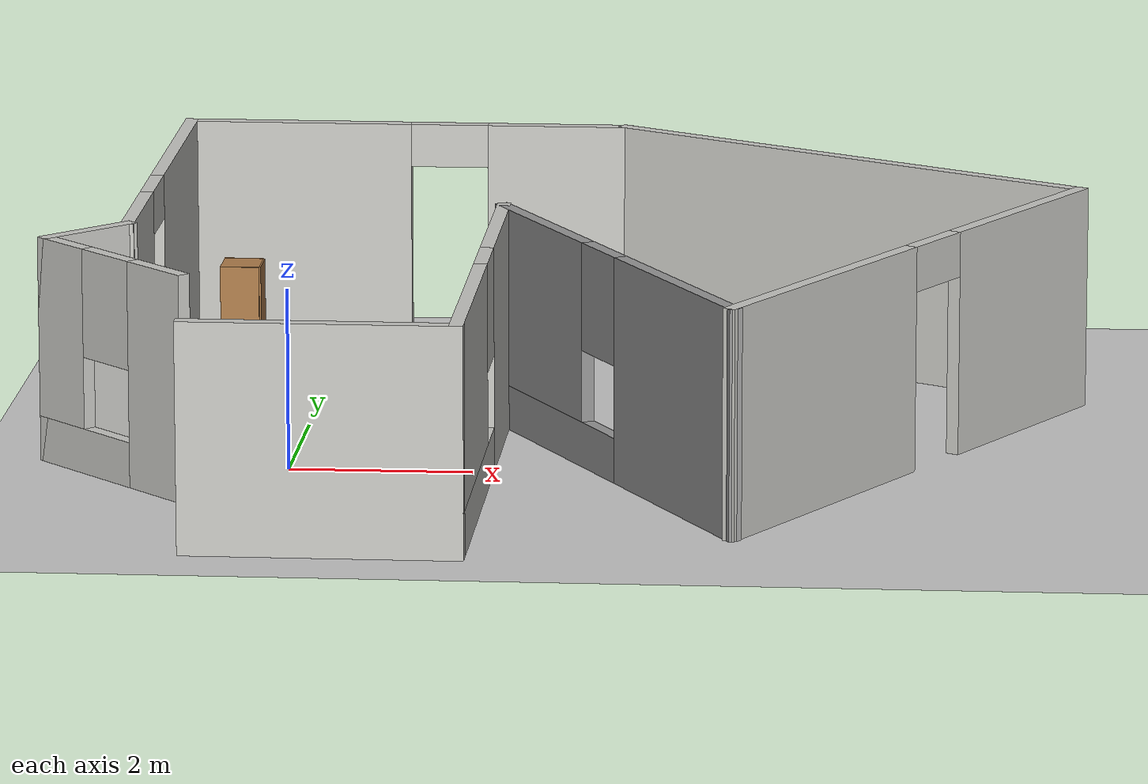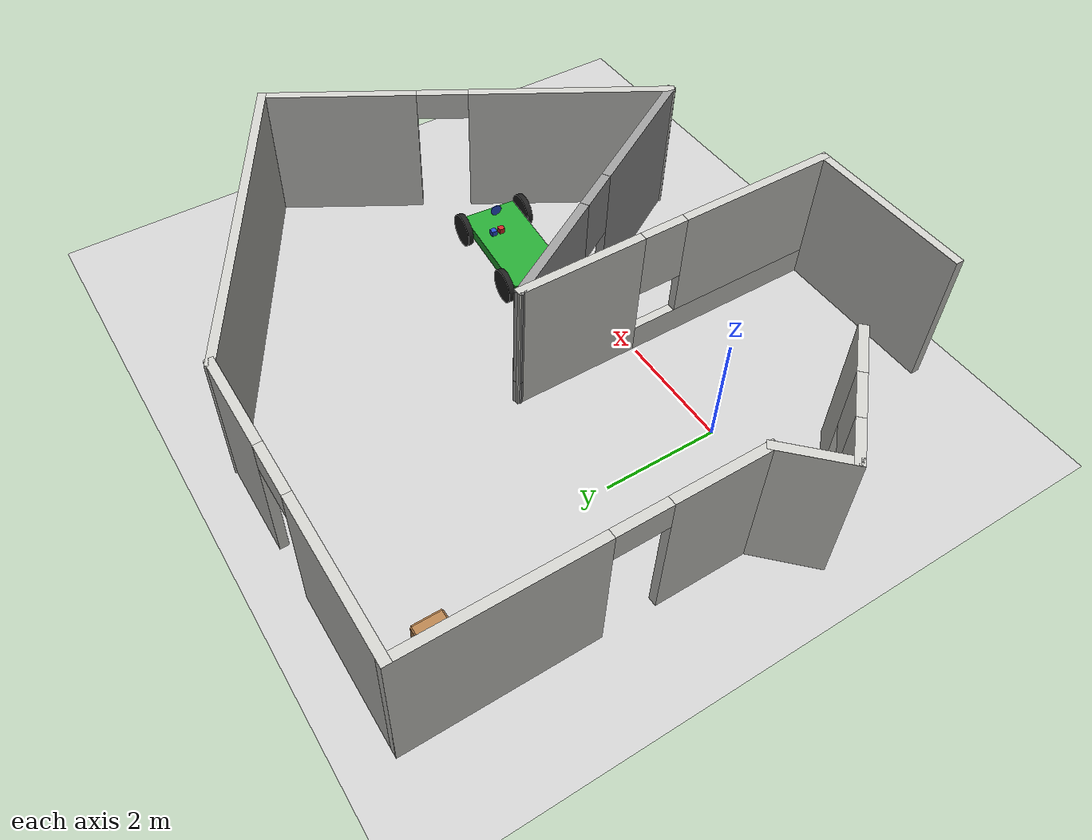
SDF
<sdf version="1.7">
 <world name="default">
  <light name="sun" type="directional">
   <pose>0 0 10 0 -0 0</pose>
   <diffuse>0.8 0.8 0.8 1</diffuse>
   <specular>0.2 0.2 0.2 1</specular>
   <attenuation>
    <range>1000</range>
    <constant>0.9</constant>
    <linear>0.01</linear>
    <quadratic>0.001</quadratic>
   </attenuation>
   <direction>-0.5 0.1 -0.9</direction>
   <spot><inner_angle>0</inner_angle><outer_angle>0</outer_angle><falloff>0</falloff></spot>
  </light>
  <model name="ground_plane">
   <static>1</static>
   <link name="link">
    <collision name="collision">
     <geometry><plane><normal>0 0 1</normal><size>100 100</size></plane></geometry>
     <surface>
      <contact><collide_bitmask>65535</collide_bitmask></contact>
      <friction><ode><mu>100</mu><mu2>50</mu2></ode></friction>
     </surface>
    </collision>
    <visual name="visual">
     <cast_shadows>0</cast_shadows>
     <geometry><plane><normal>0 0 1</normal><size>100 100</size></plane></geometry>
     <material>
      <script><uri>file://media/materials/scripts/gazebo.material</uri><name>Gazebo/Grey</name></script>
     </material>
    </visual>
   </link>
  </model>
  <gravity>0 0 -9.8</gravity>
  <magnetic_field>6e-06 2.3e-05 -4.2e-05</magnetic_field>
  <atmosphere type="adiabatic"/>
  <physics type="ode">
   <max_step_size>0.001</max_step_size>
   <real_time_factor>1</real_time_factor>
   <real_time_update_rate>1000</real_time_update_rate>
  </physics>
  <scene><ambient>0.4 0.4 0.4 1</ambient><background>0.7 0.7 0.7 1</background><shadows>1</shadows></scene>
  <audio><device>default</device></audio>
  <spherical_coordinates>
   <surface_model>EARTH_WGS84</surface_model>
   <latitude_deg>0</latitude_deg>
   <longitude_deg>0</longitude_deg>
   <elevation>0</elevation>
   <heading_deg>0</heading_deg>
  </spherical_coordinates>
  <model name="ors_building">
   <pose>2.92877 1.47219 0 0 -0 0</pose>
   <link name="Wall_0">
    <pose>-4.74763 -2.12288 0 0 -0 2.35619</pose>
    <visual name="Wall_0_Visual_0">
     <pose>-0.799423 0 1.25 0 -0 0</pose>
     <geometry><box><size>0.901154 0.15 2.5</size></box></geometry>
     <material>
      <script><uri>file://media/materials/scripts/gazebo.material</uri><name>Gazebo/CeilingTiled</name></script>
      <ambient>1 1 1 1</ambient>
     </material>
     <meta><layer>0</layer></meta>
    </visual>
    <collision name="Wall_0_Collision_0">
     <geometry><box><size>0.901154 0.15 2.5</size></box></geometry>
     <pose>-0.799423 0 1.25 0 -0 0</pose>
    </collision>
    <visual name="Wall_0_Visual_1">
     <pose>0.450577 0 0.25 0 -0 0</pose>
     <geometry><box><size>1.59885 0.15 0.5</size></box></geometry>
     <material>
      <script><uri>file://media/materials/scripts/gazebo.material</uri><name>Gazebo/CeilingTiled</name></script>
      <ambient>1 1 1 1</ambient>
     </material>
     <meta><layer>0</layer></meta>
    </visual>
    <collision name="Wall_0_Collision_1">
     <geometry><box><size>1.59885 0.15 0.5</size></box></geometry>
     <pose>0.450577 0 0.25 0 -0 0</pose>
    </collision>
    <visual name="Wall_0_Visual_2">
     <pose>0.850577 0 1.5 0 -0 0</pose>
     <geometry><box><size>0.798846 0.15 2</size></box></geometry>
     <material>
      <script><uri>file://media/materials/scripts/gazebo.material</uri><name>Gazebo/CeilingTiled</name></script>
      <ambient>1 1 1 1</ambient>
     </material>
     <meta><layer>0</layer></meta>
    </visual>
    <collision name="Wall_0_Collision_2">
     <geometry><box><size>0.798846 0.15 2</size></box></geometry>
     <pose>0.850577 0 1.5 0 -0 0</pose>
    </collision>
    <visual name="Wall_0_Visual_3">
     <pose>0.051154 0 1.9 0 -0 0</pose>
     <geometry><box><size>0.8 0.15 1.2</size></box></geometry>
     <material>
      <script><uri>file://media/materials/scripts/gazebo.material</uri><name>Gazebo/CeilingTiled</name></script>
      <ambient>1 1 1 1</ambient>
     </material>
     <meta><layer>0</layer></meta>
    </visual>
    <collision name="Wall_0_Collision_3">
     <geometry><box><size>0.8 0.15 1.2</size></box></geometry>
     <pose>0.051154 0 1.9 0 -0 0</pose>
    </collision>
   </link>
   <link name="Wall_1">
    <collision name="Wall_1_Collision">
     <geometry><box><size>1.25 0.15 2.5</size></box></geometry>
     <pose>0 0 1.25 0 -0 0</pose>
    </collision>
    <visual name="Wall_1_Visual">
     <pose>0 0 1.25 0 -0 0</pose>
     <geometry><box><size>1.25 0.15 2.5</size></box></geometry>
     <material>
      <script><uri>file://media/materials/scripts/gazebo.material</uri><name>Gazebo/CeilingTiled</name></script>
      <ambient>1 1 1 1</ambient>
     </material>
     <meta><layer>0</layer></meta>
    </visual>
    <pose>-5.18957 -0.903116 0 0 -0 0.785398</pose>
   </link>
   <link name="Wall_2">
    <pose>-4.80066 2.28579 0 0 -0 1.5708</pose>
    <visual name="Wall_2_Visual_0">
     <pose>-2.03282 0 1.25 0 -0 0</pose>
     <geometry><box><size>1.68436 0.15 2.5</size></box></geometry>
     <material>
      <script><uri>file://media/materials/scripts/gazebo.material</uri><name>Gazebo/CeilingTiled</name></script>
      <ambient>1 1 1 1</ambient>
     </material>
     <meta><layer>0</layer></meta>
    </visual>
    <collision name="Wall_2_Collision_0">
     <geometry><box><size>1.68436 0.15 2.5</size></box></geometry>
     <pose>-2.03282 0 1.25 0 -0 0</pose>
    </collision>
    <visual name="Wall_2_Visual_1">
     <pose>1.29218 0 1.25 0 -0 0</pose>
     <geometry><box><size>3.16564 0.15 2.5</size></box></geometry>
     <material>
      <script><uri>file://media/materials/scripts/gazebo.material</uri><name>Gazebo/CeilingTiled</name></script>
      <ambient>1 1 1 1</ambient>
     </material>
     <meta><layer>0</layer></meta>
    </visual>
    <collision name="Wall_2_Collision_1">
     <geometry><box><size>3.16564 0.15 2.5</size></box></geometry>
     <pose>1.29218 0 1.25 0 -0 0</pose>
    </collision>
    <visual name="Wall_2_Visual_2">
     <pose>-0.740638 0 2.25 0 -0 0</pose>
     <geometry><box><size>0.9 0.15 0.5</size></box></geometry>
     <material>
      <script><uri>file://media/materials/scripts/gazebo.material</uri><name>Gazebo/CeilingTiled</name></script>
      <ambient>1 1 1 1</ambient>
     </material>
     <meta><layer>0</layer></meta>
    </visual>
    <collision name="Wall_2_Collision_2">
     <geometry><box><size>0.9 0.15 0.5</size></box></geometry>
     <pose>-0.740638 0 2.25 0 -0 0</pose>
    </collision>
   </link>
   <link name="Wall_3">
    <pose>-2.25066 5.08579 0 0 -0 0</pose>
    <visual name="Wall_3_Visual_0">
     <pose>-1.29466 0 1.25 0 -0 0</pose>
     <geometry><box><size>2.66068 0.15 2.5</size></box></geometry>
     <material>
      <script><uri>file://media/materials/scripts/gazebo.material</uri><name>Gazebo/CeilingTiled</name></script>
      <ambient>1 1 1 1</ambient>
     </material>
     <meta><layer>0</layer></meta>
    </visual>
    <collision name="Wall_3_Collision_0">
     <geometry><box><size>2.66068 0.15 2.5</size></box></geometry>
     <pose>-1.29466 0 1.25 0 -0 0</pose>
    </collision>
    <visual name="Wall_3_Visual_1">
     <pose>1.78034 0 1.25 0 -0 0</pose>
     <geometry><box><size>1.68932 0.15 2.5</size></box></geometry>
     <material>
      <script><uri>file://media/materials/scripts/gazebo.material</uri><name>Gazebo/CeilingTiled</name></script>
      <ambient>1 1 1 1</ambient>
     </material>
     <meta><layer>0</layer></meta>
    </visual>
    <collision name="Wall_3_Collision_1">
     <geometry><box><size>1.68932 0.15 2.5</size></box></geometry>
     <pose>1.78034 0 1.25 0 -0 0</pose>
    </collision>
    <visual name="Wall_3_Visual_2">
     <pose>0.485677 0 2.25 0 -0 0</pose>
     <geometry><box><size>0.9 0.15 0.5</size></box></geometry>
     <material>
      <script><uri>file://media/materials/scripts/gazebo.material</uri><name>Gazebo/CeilingTiled</name></script>
      <ambient>1 1 1 1</ambient>
     </material>
     <meta><layer>0</layer></meta>
    </visual>
    <collision name="Wall_3_Collision_2">
     <geometry><box><size>0.9 0.15 0.5</size></box></geometry>
     <pose>0.485677 0 2.25 0 -0 0</pose>
    </collision>
   </link>
   <link name="Wall_4">
    <collision name="Wall_4_Collision">
     <geometry><box><size>6.25 0.15 2.5</size></box></geometry>
     <pose>0 0 1.25 0 -0 0</pose>
    </collision>
    <visual name="Wall_4_Visual">
     <pose>0 0 1.25 0 -0 0</pose>
     <geometry><box><size>6.25 0.15 2.5</size></box></geometry>
     <material>
      <script><uri>file://media/materials/scripts/gazebo.material</uri><name>Gazebo/CeilingTiled</name></script>
      <ambient>1 1 1 1</ambient>
     </material>
     <meta><layer>0</layer></meta>
    </visual>
    <pose>2.94072 3.56079 0 0 -0 -0.523599</pose>
   </link>
   <link name="Wall_5">
    <pose>3.80709 -1.0386 0 0 -0 -2.0944</pose>
    <visual name="Wall_5_Visual_0">
     <pose>-2.25054 0 1.25 0 -0 0</pose>
     <geometry><box><size>2.74892 0.15 2.5</size></box></geometry>
     <material>
      <script><uri>file://media/materials/scripts/gazebo.material</uri><name>Gazebo/CeilingTiled</name></script>
      <ambient>1 1 1 1</ambient>
     </material>
     <meta><layer>0</layer></meta>
    </visual>
    <collision name="Wall_5_Collision_0">
     <geometry><box><size>2.74892 0.15 2.5</size></box></geometry>
     <pose>-2.25054 0 1.25 0 -0 0</pose>
    </collision>
    <visual name="Wall_5_Visual_1">
     <pose>1.82446 0 1.25 0 -0 0</pose>
     <geometry><box><size>3.60108 0.15 2.5</size></box></geometry>
     <material>
      <script><uri>file://media/materials/scripts/gazebo.material</uri><name>Gazebo/CeilingTiled</name></script>
      <ambient>1 1 1 1</ambient>
     </material>
     <meta><layer>0</layer></meta>
    </visual>
    <collision name="Wall_5_Collision_1">
     <geometry><box><size>3.60108 0.15 2.5</size></box></geometry>
     <pose>1.82446 0 1.25 0 -0 0</pose>
    </collision>
    <visual name="Wall_5_Visual_2">
     <pose>-0.42608 0 2.25 0 -0 0</pose>
     <geometry><box><size>0.9 0.15 0.5</size></box></geometry>
     <material>
      <script><uri>file://media/materials/scripts/gazebo.material</uri><name>Gazebo/CeilingTiled</name></script>
      <ambient>1 1 1 1</ambient>
     </material>
     <meta><layer>0</layer></meta>
    </visual>
    <collision name="Wall_5_Collision_2">
     <geometry><box><size>0.9 0.15 0.5</size></box></geometry>
     <pose>-0.42608 0 2.25 0 -0 0</pose>
    </collision>
   </link>
   <link name="Wall_7">
    <pose>0.632093 -1.68812 0 0 -0 2.0944</pose>
    <visual name="Wall_7_Visual_0">
     <pose>-1.50613 0 1.25 0 -0 0</pose>
     <geometry><box><size>2.73775 0.15 2.5</size></box></geometry>
     <material>
      <script><uri>file://media/materials/scripts/gazebo.material</uri><name>Gazebo/Grey</name></script>
      <ambient>1 1 1 1</ambient>
     </material>
     <meta><layer>0</layer></meta>
    </visual>
    <collision name="Wall_7_Collision_0">
     <geometry><box><size>2.73775 0.15 2.5</size></box></geometry>
     <pose>-1.50613 0 1.25 0 -0 0</pose>
    </collision>
    <visual name="Wall_7_Visual_1">
     <pose>1.36887 0 0.25 0 -0 0</pose>
     <geometry><box><size>3.01225 0.15 0.5</size></box></geometry>
     <material>
      <script><uri>file://media/materials/scripts/gazebo.material</uri><name>Gazebo/Grey</name></script>
      <ambient>1 1 1 1</ambient>
     </material>
     <meta><layer>0</layer></meta>
    </visual>
    <collision name="Wall_7_Collision_1">
     <geometry><box><size>3.01225 0.15 0.5</size></box></geometry>
     <pose>1.36887 0 0.25 0 -0 0</pose>
    </collision>
    <visual name="Wall_7_Visual_2">
     <pose>1.76887 0 1.5 0 -0 0</pose>
     <geometry><box><size>2.21225 0.15 2</size></box></geometry>
     <material>
      <script><uri>file://media/materials/scripts/gazebo.material</uri><name>Gazebo/Grey</name></script>
      <ambient>1 1 1 1</ambient>
     </material>
     <meta><layer>0</layer></meta>
    </visual>
    <collision name="Wall_7_Collision_2">
     <geometry><box><size>2.21225 0.15 2</size></box></geometry>
     <pose>1.76887 0 1.5 0 -0 0</pose>
    </collision>
    <visual name="Wall_7_Visual_3">
     <pose>0.262748 0 1.9 0 -0 0</pose>
     <geometry><box><size>0.8 0.15 1.2</size></box></geometry>
     <material>
      <script><uri>file://media/materials/scripts/gazebo.material</uri><name>Gazebo/Grey</name></script>
      <ambient>1 1 1 1</ambient>
     </material>
     <meta><layer>0</layer></meta>
    </visual>
    <collision name="Wall_7_Collision_3">
     <geometry><box><size>0.8 0.15 1.2</size></box></geometry>
     <pose>0.262748 0 1.9 0 -0 0</pose>
    </collision>
   </link>
   <link name="Wall_8">
    <pose>-0.767907 -2.18825 0 0 -0 -1.5708</pose>
    <visual name="Wall_8_Visual_0">
     <pose>-1.86453 0 1.25 0 -0 0</pose>
     <geometry><box><size>2.27095 0.15 2.5</size></box></geometry>
     <material>
      <script><uri>file://media/materials/scripts/gazebo.material</uri><name>Gazebo/CeilingTiled</name></script>
      <ambient>1 1 1 1</ambient>
     </material>
     <meta><layer>0</layer></meta>
    </visual>
    <collision name="Wall_8_Collision_0">
     <geometry><box><size>2.27095 0.15 2.5</size></box></geometry>
     <pose>-1.86453 0 1.25 0 -0 0</pose>
    </collision>
    <visual name="Wall_8_Visual_1">
     <pose>1.13547 0 0.25 0 -0 0</pose>
     <geometry><box><size>3.72905 0.15 0.5</size></box></geometry>
     <material>
      <script><uri>file://media/materials/scripts/gazebo.material</uri><name>Gazebo/CeilingTiled</name></script>
      <ambient>1 1 1 1</ambient>
     </material>
     <meta><layer>0</layer></meta>
    </visual>
    <collision name="Wall_8_Collision_1">
     <geometry><box><size>3.72905 0.15 0.5</size></box></geometry>
     <pose>1.13547 0 0.25 0 -0 0</pose>
    </collision>
    <visual name="Wall_8_Visual_2">
     <pose>1.53547 0 1.5 0 -0 0</pose>
     <geometry><box><size>2.92905 0.15 2</size></box></geometry>
     <material>
      <script><uri>file://media/materials/scripts/gazebo.material</uri><name>Gazebo/CeilingTiled</name></script>
      <ambient>1 1 1 1</ambient>
     </material>
     <meta><layer>0</layer></meta>
    </visual>
    <collision name="Wall_8_Collision_2">
     <geometry><box><size>2.92905 0.15 2</size></box></geometry>
     <pose>1.53547 0 1.5 0 -0 0</pose>
    </collision>
    <visual name="Wall_8_Visual_3">
     <pose>-0.329052 0 1.9 0 -0 0</pose>
     <geometry><box><size>0.8 0.15 1.2</size></box></geometry>
     <material>
      <script><uri>file://media/materials/scripts/gazebo.material</uri><name>Gazebo/CeilingTiled</name></script>
      <ambient>1 1 1 1</ambient>
     </material>
     <meta><layer>0</layer></meta>
    </visual>
    <collision name="Wall_8_Collision_3">
     <geometry><box><size>0.8 0.15 1.2</size></box></geometry>
     <pose>-0.329052 0 1.9 0 -0 0</pose>
    </collision>
   </link>
   <link name="Wall_9">
    <collision name="Wall_9_Collision">
     <geometry><box><size>3 0.15 2.5</size></box></geometry>
     <pose>0 0 1.25 0 -0 0</pose>
    </collision>
    <visual name="Wall_9_Visual">
     <pose>0 0 1.25 0 -0 0</pose>
     <geometry><box><size>3 0.15 2.5</size></box></geometry>
     <material>
      <script><uri>file://media/materials/scripts/gazebo.material</uri><name>Gazebo/CeilingTiled</name></script>
      <ambient>1 1 1 1</ambient>
     </material>
     <meta><layer>0</layer></meta>
    </visual>
    <pose>-2.19291 -5.11325 0 0 -0 3.14159</pose>
   </link>
   <static>1</static>
  </model>
  <model name="cabinet">
   <static>1</static>
   <link name="cabinet_bottom_plate">
    <inertial>
     <pose>0 0 -1 0 -0 0</pose>
     <inertia><ixx>2.05</ixx><ixy>0</ixy><ixz>0</ixz><iyy>2.05</iyy><iyz>0</iyz><izz>2.05</izz></inertia>
     <mass>25</mass>
    </inertial>
    <collision name="cabinet_bottom_plate_geom">
     <pose>0 0 0.01 0 -0 0</pose>
     <geometry><box><size>0.45 0.45 0.02</size></box></geometry>
    </collision>
    <visual name="cabinet_bottom_plate_geom_visual">
     <pose>0 0 0.01 0 -0 0</pose>
     <geometry><box><size>0.45 0.45 0.02</size></box></geometry>
     <material>
      <script><uri>file://media/materials/scripts/gazebo.material</uri><name>Gazebo/Wood</name></script>
     </material>
    </visual>
    <collision name="cabinet_bottom_plate_geom_cabinet_back_plate">
     <pose>0.235 0 0.51 0 -0 0</pose>
     <geometry><box><size>0.02 0.45 1.02</size></box></geometry>
    </collision>
    <visual name="cabinet_bottom_plate_geom_cabinet_back_plate_visual">
     <pose>0.235 0 0.51 0 -0 0</pose>
     <geometry><box><size>0.02 0.45 1.02</size></box></geometry>
     <material>
      <script><uri>file://media/materials/scripts/gazebo.material</uri><name>Gazebo/Wood</name></script>
     </material>
    </visual>
    <collision name="cabinet_bottom_plate_geom_cabinet_left_plate">
     <pose>0 0.235 0.51 0 -0 0</pose>
     <geometry><box><size>0.45 0.02 1.02</size></box></geometry>
    </collision>
    <visual name="cabinet_bottom_plate_geom_cabinet_left_plate_visual">
     <pose>0 0.235 0.51 0 -0 0</pose>
     <geometry><box><size>0.45 0.02 1.02</size></box></geometry>
     <material>
      <script><uri>file://media/materials/scripts/gazebo.material</uri><name>Gazebo/Wood</name></script>
     </material>
    </visual>
    <collision name="cabinet_bottom_plate_geom_cabinet_middle_plate">
     <pose>0 0 0.51 0 -0 0</pose>
     <geometry><box><size>0.45 0.45 0.02</size></box></geometry>
    </collision>
    <visual name="cabinet_bottom_plate_geom_cabinet_middle_plate_visual">
     <pose>0 0 0.51 0 -0 0</pose>
     <geometry><box><size>0.45 0.45 0.02</size></box></geometry>
     <material>
      <script><uri>file://media/materials/scripts/gazebo.material</uri><name>Gazebo/Wood</name></script>
     </material>
    </visual>
    <collision name="cabinet_bottom_plate_geom_cabinet_right_plate">
     <pose>0 -0.235 0.51 0 -0 0</pose>
     <geometry><box><size>0.45 0.02 1.02</size></box></geometry>
    </collision>
    <visual name="cabinet_bottom_plate_geom_cabinet_right_plate_visual">
     <pose>0 -0.235 0.51 0 -0 0</pose>
     <geometry><box><size>0.45 0.02 1.02</size></box></geometry>
     <material>
      <script><uri>file://media/materials/scripts/gazebo.material</uri><name>Gazebo/Wood</name></script>
     </material>
    </visual>
    <collision name="cabinet_bottom_plate_geom_cabinet_top_plate">
     <pose>0 0 1.01 0 -0 0</pose>
     <geometry><box><size>0.45 0.45 0.02</size></box></geometry>
    </collision>
    <visual name="cabinet_bottom_plate_geom_cabinet_top_plate_visual">
     <pose>0 0 1.01 0 -0 0</pose>
     <geometry><box><size>0.45 0.45 0.02</size></box></geometry>
     <material>
      <script><uri>file://media/materials/scripts/gazebo.material</uri><name>Gazebo/Wood</name></script>
     </material>
    </visual>
   </link>
   <pose>-1.18067 5.58558 0 0 -0 0</pose>
  </model>
  <model name="car">
   <link name="chassis">
    <pose>0 0 0.3 0 -0 0</pose>
    <collision name="collision"><geometry><box><size>2 1 0.2</size></box></geometry></collision>
    <visual name="visual">
     <geometry><box><size>2 1 0.2</size></box></geometry>
     <material>
      <script><uri>file://media/materials/scripts/gazebo.material</uri><name>Gazebo/Green</name></script>
     </material>
    </visual>
    <inertial>
     <inertia><ixx>1</ixx><ixy>0</ixy><ixz>0</ixz><iyy>1</iyy><iyz>0</iyz><izz>1</izz></inertia>
     <mass>1</mass>
    </inertial>
   </link>
   <link name="front_left_wheel">
    <pose>0.8 0.6 0.3 -0 1.5707 1.5707</pose>
    <collision name="collision">
     <geometry><cylinder><radius>0.3</radius><length>0.1</length></cylinder></geometry>
    </collision>
    <visual name="visual">
     <geometry><cylinder><radius>0.3</radius><length>0.1</length></cylinder></geometry>
     <material>
      <script><uri>file://media/materials/scripts/gazebo.material</uri><name>Gazebo/Black</name></script>
     </material>
    </visual>
    <inertial>
     <inertia><ixx>1</ixx><ixy>0</ixy><ixz>0</ixz><iyy>1</iyy><iyz>0</iyz><izz>1</izz></inertia>
     <mass>1</mass>
    </inertial>
   </link>
   <link name="front_right_wheel">
    <pose>0.8 -0.6 0.3 -0 1.5707 1.5707</pose>
    <collision name="collision">
     <geometry><cylinder><radius>0.3</radius><length>0.1</length></cylinder></geometry>
    </collision>
    <visual name="visual">
     <geometry><cylinder><radius>0.3</radius><length>0.1</length></cylinder></geometry>
     <material>
      <script><uri>file://media/materials/scripts/gazebo.material</uri><name>Gazebo/Black</name></script>
     </material>
    </visual>
    <inertial>
     <inertia><ixx>1</ixx><ixy>0</ixy><ixz>0</ixz><iyy>1</iyy><iyz>0</iyz><izz>1</izz></inertia>
     <mass>1</mass>
    </inertial>
   </link>
   <link name="back_right_wheel">
    <pose>-0.8 -0.6 0.3 -0 1.5707 1.5707</pose>
    <collision name="collision">
     <geometry><cylinder><radius>0.3</radius><length>0.1</length></cylinder></geometry>
    </collision>
    <visual name="visual">
     <geometry><cylinder><radius>0.3</radius><length>0.1</length></cylinder></geometry>
     <material>
      <script><uri>file://media/materials/scripts/gazebo.material</uri><name>Gazebo/Black</name></script>
     </material>
    </visual>
    <inertial>
     <inertia><ixx>1</ixx><ixy>0</ixy><ixz>0</ixz><iyy>1</iyy><iyz>0</iyz><izz>1</izz></inertia>
     <mass>1</mass>
    </inertial>
   </link>
   <link name="back_left_wheel">
    <pose>-0.8 0.6 0.3 -0 1.5707 1.5707</pose>
    <collision name="collision">
     <geometry><cylinder><radius>0.3</radius><length>0.1</length></cylinder></geometry>
    </collision>
    <visual name="visual">
     <geometry><cylinder><radius>0.3</radius><length>0.1</length></cylinder></geometry>
     <material>
      <script><uri>file://media/materials/scripts/gazebo.material</uri><name>Gazebo/Black</name></script>
     </material>
    </visual>
    <inertial>
     <inertia><ixx>1</ixx><ixy>0</ixy><ixz>0</ixz><iyy>1</iyy><iyz>0</iyz><izz>1</izz></inertia>
     <mass>1</mass>
    </inertial>
   </link>
   <link name="gas_pedal">
    <pose>0.3 0.1 0.5 0 -0 0</pose>
    <collision name="collision"><geometry><box><size>0.1 0.1 0.1</size></box></geometry></collision>
    <visual name="visual">
     <geometry><box><size>0.1 0.1 0.1</size></box></geometry>
     <material>
      <script><uri>file://media/materials/scripts/gazebo.material</uri><name>Gazebo/Red</name></script>
     </material>
    </visual>
    <inertial>
     <inertia><ixx>1</ixx><ixy>0</ixy><ixz>0</ixz><iyy>1</iyy><iyz>0</iyz><izz>1</izz></inertia>
     <mass>1</mass>
    </inertial>
   </link>
   <link name="brake_pedal">
    <pose>0.3 0.25 0.5 0 -0 0</pose>
    <collision name="collision"><geometry><box><size>0.1 0.1 0.1</size></box></geometry></collision>
    <visual name="visual">
     <geometry><box><size>0.1 0.1 0.1</size></box></geometry>
     <material>
      <script><uri>file://media/materials/scripts/gazebo.material</uri><name>Gazebo/Blue</name></script>
     </material>
    </visual>
    <inertial>
     <inertia><ixx>1</ixx><ixy>0</ixy><ixz>0</ixz><iyy>1</iyy><iyz>0</iyz><izz>1</izz></inertia>
     <mass>1</mass>
    </inertial>
   </link>
   <link name="steering_wheel">
    <pose>0.3 0.2 1 0 1.5707 0</pose>
    <collision name="collision">
     <geometry><cylinder><radius>0.1</radius><length>0.01</length></cylinder></geometry>
    </collision>
    <visual name="visual">
     <geometry><cylinder><radius>0.1</radius><length>0.01</length></cylinder></geometry>
     <material>
      <script><uri>file://media/materials/scripts/gazebo.material</uri><name>Gazebo/Blue</name></script>
     </material>
    </visual>
    <inertial>
     <inertia><ixx>1</ixx><ixy>0</ixy><ixz>0</ixz><iyy>1</iyy><iyz>0</iyz><izz>1</izz></inertia>
     <mass>1</mass>
    </inertial>
   </link>
   <joint name="gas_joint" type="prismatic">
    <parent>chassis</parent>
    <child>gas_pedal</child>
    <axis>
     <xyz expressed_in="__model__">1 0 0</xyz>
     <limit><lower>0</lower><upper>0.2</upper></limit>
     <dynamics><spring_reference>0</spring_reference><spring_stiffness>0</spring_stiffness></dynamics>
    </axis>
   </joint>
   <joint name="brake_joint" type="prismatic">
    <parent>chassis</parent>
    <child>brake_pedal</child>
    <axis>
     <xyz expressed_in="__model__">1 0 0</xyz>
     <limit><lower>0</lower><upper>0.2</upper></limit>
     <dynamics><spring_reference>0</spring_reference><spring_stiffness>0</spring_stiffness></dynamics>
    </axis>
   </joint>
   <joint name="steering_joint" type="revolute">
    <parent>chassis</parent>
    <child>steering_wheel</child>
    <axis>
     <xyz expressed_in="__model__">1 0 0</xyz>
     <limit><lower>-7.853</lower><upper>7.853</upper></limit>
     <dynamics><spring_reference>0</spring_reference><spring_stiffness>0</spring_stiffness></dynamics>
    </axis>
   </joint>
   <joint name="front_left_joint" type="revolute2">
    <parent>chassis</parent>
    <child>front_left_wheel</child>
    <axis>
     <xyz expressed_in="__model__">0 0 1</xyz>
     <limit><lower>-0.000498402</lower><upper>-0.000498402</upper></limit>
     <dynamics><spring_reference>0</spring_reference><spring_stiffness>0</spring_stiffness></dynamics>
    </axis>
    <axis2>
     <xyz expressed_in="__model__">0 1 0</xyz>
     <limit><upper>1e+16</upper><lower>-1e+16</lower></limit>
     <dynamics><spring_reference>0</spring_reference><spring_stiffness>0</spring_stiffness></dynamics>
    </axis2>
    <physics><ode><limit><cfm>0</cfm><erp>0.9</erp></limit></ode></physics>
   </joint>
   <joint name="front_right_joint" type="revolute2">
    <parent>chassis</parent>
    <child>front_right_wheel</child>
    <axis>
     <xyz expressed_in="__model__">0 0 1</xyz>
     <limit><lower>-0.000498402</lower><upper>-0.000498402</upper></limit>
     <dynamics><spring_reference>0</spring_reference><spring_stiffness>0</spring_stiffness></dynamics>
    </axis>
    <axis2>
     <xyz expressed_in="__model__">0 1 0</xyz>
     <limit><upper>1e+16</upper><lower>-1e+16</lower></limit>
     <dynamics><spring_reference>0</spring_reference><spring_stiffness>0</spring_stiffness></dynamics>
    </axis2>
    <physics><ode><limit><cfm>0</cfm><erp>0.9</erp></limit></ode></physics>
   </joint>
   <joint name="back_right_joint" type="revolute2">
    <parent>chassis</parent>
    <child>back_right_wheel</child>
    <axis>
     <xyz expressed_in="__model__">0 0 1</xyz>
     <limit><lower>0</lower><upper>0</upper></limit>
     <dynamics><spring_reference>0</spring_reference><spring_stiffness>0</spring_stiffness></dynamics>
    </axis>
    <axis2>
     <xyz expressed_in="__model__">0 1 0</xyz>
     <limit><upper>1e+16</upper><lower>-1e+16</lower></limit>
     <dynamics><spring_reference>0</spring_reference><spring_stiffness>0</spring_stiffness></dynamics>
    </axis2>
    <physics><ode><limit><cfm>0</cfm><erp>0.9</erp></limit></ode></physics>
   </joint>
   <joint name="back_left_joint" type="revolute2">
    <parent>chassis</parent>
    <child>back_left_wheel</child>
    <axis>
     <xyz expressed_in="__model__">0 0 1</xyz>
     <limit><lower>0</lower><upper>0</upper></limit>
     <dynamics><spring_reference>0</spring_reference><spring_stiffness>0</spring_stiffness></dynamics>
    </axis>
    <axis2>
     <xyz expressed_in="__model__">0 1 0</xyz>
     <limit><upper>1e+16</upper><lower>-1e+16</lower></limit>
     <dynamics><spring_reference>0</spring_reference><spring_stiffness>0</spring_stiffness></dynamics>
    </axis2>
    <physics><ode><limit><cfm>0</cfm><erp>0.9</erp></limit></ode></physics>
   </joint>
   <plugin name="vehicle" filename="libVehiclePlugin.so">
    <front_left>front_left_joint</front_left>
    <front_right>front_right_joint</front_right>
    <back_left>back_left_joint</back_left>
    <back_right>back_right_joint</back_right>
    <gas>gas_joint</gas>
    <brake>brake_joint</brake>
    <steering>steering_joint</steering>
    <front_power>10</front_power>
    <rear_power>10</rear_power>
    <tire_angle_range>0.5</tire_angle_range>
    <max_speed>10</max_speed>
    <aero_load>0.1</aero_load>
   </plugin>
   <pose>4.9698 0.551082 9e-06 -4e-06 -1e-06 -0.078302</pose>
  </model>
 </world>
</sdf>
